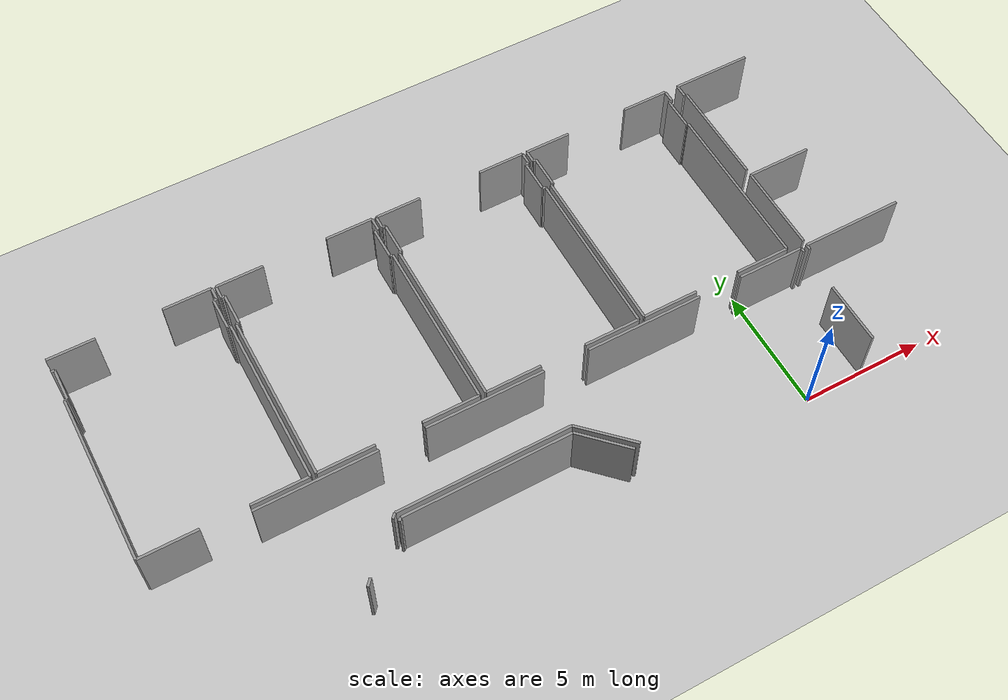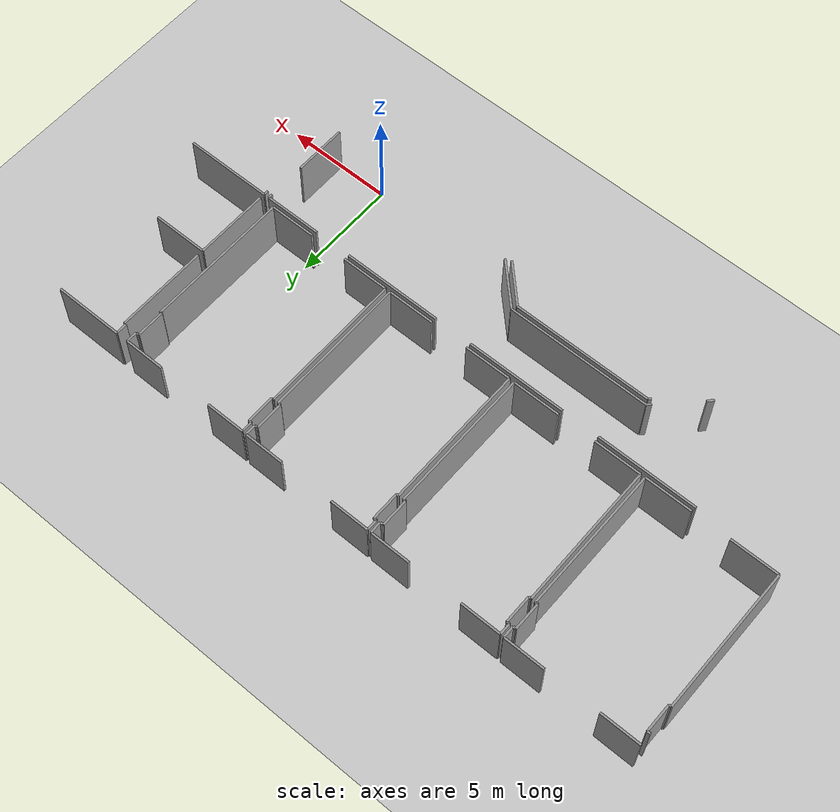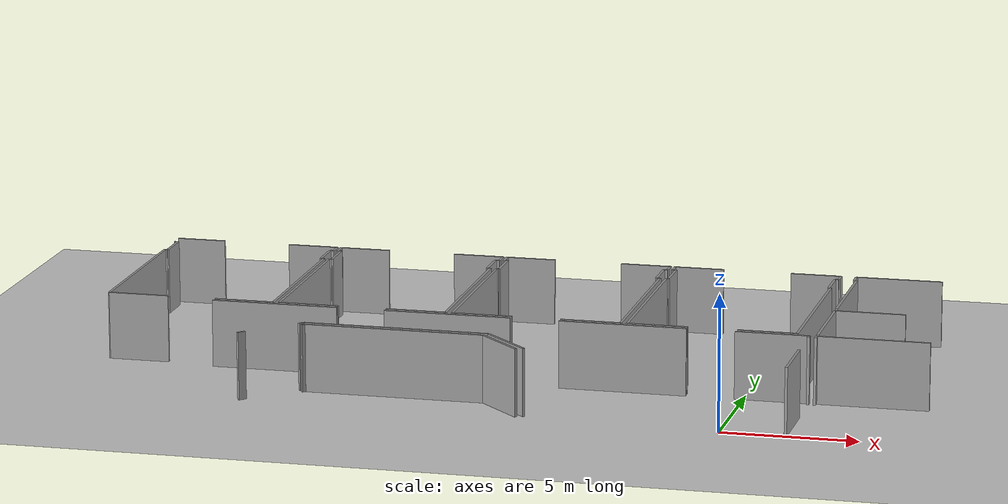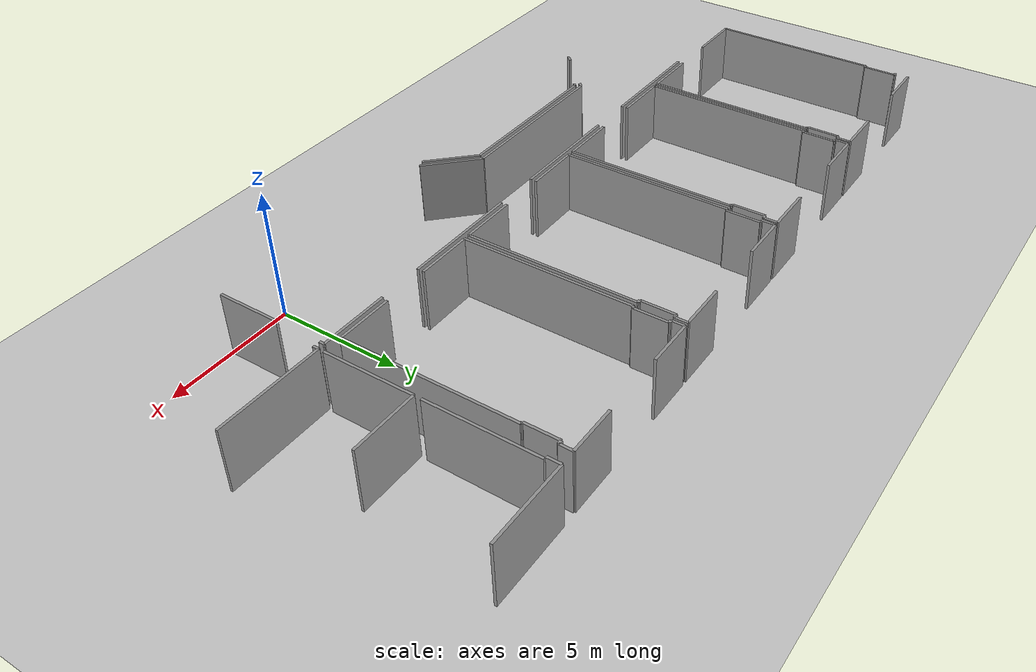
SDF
<sdf version="1.6">
 <world name="default">
  <model name="ground_plane">
   <static>1</static>
   <link name="link">
    <collision name="collision">
     <geometry><plane><normal>0 0 1</normal><size>100 100</size></plane></geometry>
     <surface><friction><ode><mu>100</mu><mu2>50</mu2></ode></friction></surface>
    </collision>
    <visual name="visual">
     <cast_shadows>0</cast_shadows>
     <geometry><plane><normal>0 0 1</normal><size>100 100</size></plane></geometry>
     <material>
      <script><uri>file://media/materials/scripts/gazebo.material</uri><name>Gazebo/Grey</name></script>
     </material>
    </visual>
   </link>
  </model>
  <model name="0510040943_A-40">
   <static>1</static>
   <link name="Wall_18">
    <collision name="Wall_18_Collision">
     <geometry><box><size>4.72179936063 0.1 2.5</size></box></geometry>
     <pose>2.36089968032 0 1.25 0 0 0</pose>
    </collision>
    <visual name="Wall_18_Visual">
     <pose>2.36089968032 0 1.25 0 0 0</pose>
     <geometry><box><size>4.72179936063 0.1 2.5</size></box></geometry>
     <material>
      <script><uri>file://media/materials/scripts/gazebo.material</uri><name>Gazebo/Grey</name></script>
      <ambient>1 1 1 1</ambient>
     </material>
    </visual>
    <pose>36.3516770691 -8.89303293246 0 0 0 0.0</pose>
   </link>
   <link name="Wall_19">
    <collision name="Wall_19_Collision">
     <geometry><box><size>4.69921855178 0.1 2.5</size></box></geometry>
     <pose>2.34960927589 0 1.25 0 0 0</pose>
    </collision>
    <visual name="Wall_19_Visual">
     <pose>2.34960927589 0 1.25 0 0 0</pose>
     <geometry><box><size>4.69921855178 0.1 2.5</size></box></geometry>
     <material>
      <script><uri>file://media/materials/scripts/gazebo.material</uri><name>Gazebo/Grey</name></script>
      <ambient>1 1 1 1</ambient>
     </material>
    </visual>
    <pose>42.8505099711 -8.89303293246 0 0 0 0.0</pose>
   </link>
   <link name="Wall_20">
    <collision name="Wall_20_Collision">
     <geometry><box><size>4.69059217537 0.1 2.5</size></box></geometry>
     <pose>2.34529608768 0 1.25 0 0 0</pose>
    </collision>
    <visual name="Wall_20_Visual">
     <pose>2.34529608768 0 1.25 0 0 0</pose>
     <geometry><box><size>4.69059217537 0.1 2.5</size></box></geometry>
     <material>
      <script><uri>file://media/materials/scripts/gazebo.material</uri><name>Gazebo/Grey</name></script>
      <ambient>1 1 1 1</ambient>
     </material>
    </visual>
    <pose>49.3622824377 -8.89303293246 0 0 0 0.0</pose>
   </link>
   <link name="Wall_21">
    <collision name="Wall_21_Collision">
     <geometry><box><size>2.69548891257 0.1 2.5</size></box></geometry>
     <pose>1.34774445628 0 1.25 0 0 0</pose>
    </collision>
    <visual name="Wall_21_Visual">
     <pose>1.34774445628 0 1.25 0 0 0</pose>
     <geometry><box><size>2.69548891257 0.1 2.5</size></box></geometry>
     <material>
      <script><uri>file://media/materials/scripts/gazebo.material</uri><name>Gazebo/Grey</name></script>
      <ambient>1 1 1 1</ambient>
     </material>
    </visual>
    <pose>55.8178565992 -8.89303293246 0 0 0 0.0</pose>
   </link>
   <link name="Wall_22">
    <collision name="Wall_22_Collision">
     <geometry><box><size>0.188511696352 0.1 2.5</size></box></geometry>
     <pose>0.0942558481758 0 1.25 0 0 0</pose>
    </collision>
    <visual name="Wall_22_Visual">
     <pose>0.0942558481758 0 1.25 0 0 0</pose>
     <geometry><box><size>0.188511696352 0.1 2.5</size></box></geometry>
     <material>
      <script><uri>file://media/materials/scripts/gazebo.material</uri><name>Gazebo/Grey</name></script>
      <ambient>1 1 1 1</ambient>
     </material>
    </visual>
    <pose>58.5133455117 -8.89303293246 0 0 0 -1.57079632679</pose>
   </link>
   <link name="Wall_23">
    <collision name="Wall_23_Collision">
     <geometry><box><size>2.47729233267 0.1 2.5</size></box></geometry>
     <pose>1.23864616634 0 1.25 0 0 0</pose>
    </collision>
    <visual name="Wall_23_Visual">
     <pose>1.23864616634 0 1.25 0 0 0</pose>
     <geometry><box><size>2.47729233267 0.1 2.5</size></box></geometry>
     <material>
      <script><uri>file://media/materials/scripts/gazebo.material</uri><name>Gazebo/Grey</name></script>
      <ambient>1 1 1 1</ambient>
     </material>
    </visual>
    <pose>58.5133455117 -10.8866138935 0 0 0 -1.57079632679</pose>
   </link>
   <link name="Wall_30">
    <collision name="Wall_30_Collision">
     <geometry><box><size>2.41902203418 0.1 2.5</size></box></geometry>
     <pose>1.20951101709 0 1.25 0 0 0</pose>
    </collision>
    <visual name="Wall_30_Visual">
     <pose>1.20951101709 0 1.25 0 0 0</pose>
     <geometry><box><size>2.41902203418 0.1 2.5</size></box></geometry>
     <material>
      <script><uri>file://media/materials/scripts/gazebo.material</uri><name>Gazebo/Grey</name></script>
      <ambient>1 1 1 1</ambient>
     </material>
    </visual>
    <pose>49.0349875679 -12.9497132998 0 0 0 2.35971729981</pose>
   </link>
   <link name="Wall_31">
    <collision name="Wall_31_Collision">
     <geometry><box><size>6.8106510377 0.1 2.5</size></box></geometry>
     <pose>3.40532551885 0 1.25 0 0 0</pose>
    </collision>
    <visual name="Wall_31_Visual">
     <pose>3.40532551885 0 1.25 0 0 0</pose>
     <geometry><box><size>6.8106510377 0.1 2.5</size></box></geometry>
     <material>
      <script><uri>file://media/materials/scripts/gazebo.material</uri><name>Gazebo/Grey</name></script>
      <ambient>1 1 1 1</ambient>
     </material>
    </visual>
    <pose>47.3184655199 -11.2452428071 0 0 0 3.14159265359</pose>
   </link>
   <link name="Wall_32">
    <collision name="Wall_32_Collision">
     <geometry><box><size>0.22569146261 0.1 2.5</size></box></geometry>
     <pose>0.112845731305 0 1.25 0 0 0</pose>
    </collision>
    <visual name="Wall_32_Visual">
     <pose>0.112845731305 0 1.25 0 0 0</pose>
     <geometry><box><size>0.22569146261 0.1 2.5</size></box></geometry>
     <material>
      <script><uri>file://media/materials/scripts/gazebo.material</uri><name>Gazebo/Grey</name></script>
      <ambient>1 1 1 1</ambient>
     </material>
    </visual>
    <pose>40.5078144822 -11.2452428071 0 0 0 -2.35619449019</pose>
   </link>
   <link name="Wall_33">
    <collision name="Wall_33_Collision">
     <geometry><box><size>0.31713751447 0.1 2.5</size></box></geometry>
     <pose>0.158568757235 0 1.25 0 0 0</pose>
    </collision>
    <visual name="Wall_33_Visual">
     <pose>0.158568757235 0 1.25 0 0 0</pose>
     <geometry><box><size>0.31713751447 0.1 2.5</size></box></geometry>
     <material>
      <script><uri>file://media/materials/scripts/gazebo.material</uri><name>Gazebo/Grey</name></script>
      <ambient>1 1 1 1</ambient>
     </material>
    </visual>
    <pose>38.7857106612 -12.9251027554 0 0 0 -2.30072736439</pose>
   </link>
   <link name="Wall_92">
    <collision name="Wall_92_Collision">
     <geometry><box><size>6.78642106866 0.1 2.5</size></box></geometry>
     <pose>3.39321053433 0 1.25 0 0 0</pose>
    </collision>
    <visual name="Wall_92_Visual">
     <pose>3.39321053433 0 1.25 0 0 0</pose>
     <geometry><box><size>6.78642106866 0.1 2.5</size></box></geometry>
     <material>
      <script><uri>file://media/materials/scripts/gazebo.material</uri><name>Gazebo/Grey</name></script>
      <ambient>1 1 1 1</ambient>
     </material>
    </visual>
    <pose>32.3336885371 -8.6659562592 0 0 0 1.57079632679</pose>
   </link>
   <link name="Wall_93">
    <collision name="Wall_93_Collision">
     <geometry><box><size>0.107322271274 0.1 2.5</size></box></geometry>
     <pose>0.0536611356371 0 1.25 0 0 0</pose>
    </collision>
    <visual name="Wall_93_Visual">
     <pose>0.0536611356371 0 1.25 0 0 0</pose>
     <geometry><box><size>0.107322271274 0.1 2.5</size></box></geometry>
     <material>
      <script><uri>file://media/materials/scripts/gazebo.material</uri><name>Gazebo/Grey</name></script>
      <ambient>1 1 1 1</ambient>
     </material>
    </visual>
    <pose>32.3336885371 -1.87953519054 0 0 0 0.0</pose>
   </link>
   <link name="Wall_94">
    <collision name="Wall_94_Collision">
     <geometry><box><size>1.31197036586 0.1 2.5</size></box></geometry>
     <pose>0.65598518293 0 1.25 0 0 0</pose>
    </collision>
    <visual name="Wall_94_Visual">
     <pose>0.65598518293 0 1.25 0 0 0</pose>
     <geometry><box><size>1.31197036586 0.1 2.5</size></box></geometry>
     <material>
      <script><uri>file://media/materials/scripts/gazebo.material</uri><name>Gazebo/Grey</name></script>
      <ambient>1 1 1 1</ambient>
     </material>
    </visual>
    <pose>32.4410108083 -1.87953519054 0 0 0 1.57079632679</pose>
   </link>
   <link name="Wall_95">
    <collision name="Wall_95_Collision">
     <geometry><box><size>0.138783173492 0.1 2.5</size></box></geometry>
     <pose>0.0693915867458 0 1.25 0 0 0</pose>
    </collision>
    <visual name="Wall_95_Visual">
     <pose>0.0693915867458 0 1.25 0 0 0</pose>
     <geometry><box><size>0.138783173492 0.1 2.5</size></box></geometry>
     <material>
      <script><uri>file://media/materials/scripts/gazebo.material</uri><name>Gazebo/Grey</name></script>
      <ambient>1 1 1 1</ambient>
     </material>
    </visual>
    <pose>32.4410108083 -0.567564824682 0 0 0 3.14159265359</pose>
   </link>
   <link name="Wall_97">
    <collision name="Wall_97_Collision">
     <geometry><box><size>1.86063327752 0.1 2.5</size></box></geometry>
     <pose>0.930316638758 0 1.25 0 0 0</pose>
    </collision>
    <visual name="Wall_97_Visual">
     <pose>0.930316638758 0 1.25 0 0 0</pose>
     <geometry><box><size>1.86063327752 0.1 2.5</size></box></geometry>
     <material>
      <script><uri>file://media/materials/scripts/gazebo.material</uri><name>Gazebo/Grey</name></script>
      <ambient>1 1 1 1</ambient>
     </material>
    </visual>
    <pose>32.3022276349 -0.0189019130258 0 0 0 0.0</pose>
   </link>
   <link name="Wall_98">
    <collision name="Wall_98_Collision">
     <geometry><box><size>1.91112295124 0.1 2.5</size></box></geometry>
     <pose>0.955561475618 0 1.25 0 0 0</pose>
    </collision>
    <visual name="Wall_98_Visual">
     <pose>0.955561475618 0 1.25 0 0 0</pose>
     <geometry><box><size>1.91112295124 0.1 2.5</size></box></geometry>
     <material>
      <script><uri>file://media/materials/scripts/gazebo.material</uri><name>Gazebo/Grey</name></script>
      <ambient>1 1 1 1</ambient>
     </material>
    </visual>
    <pose>36.7171563404 -0.0189019130258 0 0 0 0.0</pose>
   </link>
   <link name="Wall_99">
    <collision name="Wall_99_Collision">
     <geometry><box><size>0.542446846298 0.1 2.5</size></box></geometry>
     <pose>0.271223423149 0 1.25 0 0 0</pose>
    </collision>
    <visual name="Wall_99_Visual">
     <pose>0.271223423149 0 1.25 0 0 0</pose>
     <geometry><box><size>0.542446846298 0.1 2.5</size></box></geometry>
     <material>
      <script><uri>file://media/materials/scripts/gazebo.material</uri><name>Gazebo/Grey</name></script>
      <ambient>1 1 1 1</ambient>
     </material>
    </visual>
    <pose>38.6282792916 -0.0189019130258 0 0 0 -1.57079632679</pose>
   </link>
   <link name="Wall_100">
    <collision name="Wall_100_Collision">
     <geometry><box><size>0.132440249657 0.1 2.5</size></box></geometry>
     <pose>0.0662201248287 0 1.25 0 0 0</pose>
    </collision>
    <visual name="Wall_100_Visual">
     <pose>0.0662201248287 0 1.25 0 0 0</pose>
     <geometry><box><size>0.132440249657 0.1 2.5</size></box></geometry>
     <material>
      <script><uri>file://media/materials/scripts/gazebo.material</uri><name>Gazebo/Grey</name></script>
      <ambient>1 1 1 1</ambient>
     </material>
    </visual>
    <pose>38.6282792916 -0.561348759324 0 0 0 3.14159265359</pose>
   </link>
   <link name="Wall_101">
    <collision name="Wall_101_Collision">
     <geometry><box><size>1.29103871721 0.1 2.5</size></box></geometry>
     <pose>0.645519358604 0 1.25 0 0 0</pose>
    </collision>
    <visual name="Wall_101_Visual">
     <pose>0.645519358604 0 1.25 0 0 0</pose>
     <geometry><box><size>1.29103871721 0.1 2.5</size></box></geometry>
     <material>
      <script><uri>file://media/materials/scripts/gazebo.material</uri><name>Gazebo/Grey</name></script>
      <ambient>1 1 1 1</ambient>
     </material>
    </visual>
    <pose>38.495839042 -0.561348759324 0 0 0 -1.57079632679</pose>
   </link>
   <link name="Wall_102">
    <collision name="Wall_102_Collision">
     <geometry><box><size>0.111635459481 0.1 2.5</size></box></geometry>
     <pose>0.0558177297407 0 1.25 0 0 0</pose>
    </collision>
    <visual name="Wall_102_Visual">
     <pose>0.0558177297407 0 1.25 0 0 0</pose>
     <geometry><box><size>0.111635459481 0.1 2.5</size></box></geometry>
     <material>
      <script><uri>file://media/materials/scripts/gazebo.material</uri><name>Gazebo/Grey</name></script>
      <ambient>1 1 1 1</ambient>
     </material>
    </visual>
    <pose>38.495839042 -1.85238747653 0 0 0 0.0</pose>
   </link>
   <link name="Wall_103">
    <collision name="Wall_103_Collision">
     <geometry><box><size>6.81356878267 0.1 2.5</size></box></geometry>
     <pose>3.40678439133 0 1.25 0 0 0</pose>
    </collision>
    <visual name="Wall_103_Visual">
     <pose>3.40678439133 0 1.25 0 0 0</pose>
     <geometry><box><size>6.81356878267 0.1 2.5</size></box></geometry>
     <material>
      <script><uri>file://media/materials/scripts/gazebo.material</uri><name>Gazebo/Grey</name></script>
      <ambient>1 1 1 1</ambient>
     </material>
    </visual>
    <pose>38.6074745014 -1.85238747653 0 0 0 -1.57079632679</pose>
   </link>
   <link name="Wall_104">
    <collision name="Wall_104_Collision">
     <geometry><box><size>2.22459024712 0.1 2.5</size></box></geometry>
     <pose>1.11229512356 0 1.25 0 0 0</pose>
    </collision>
    <visual name="Wall_104_Visual">
     <pose>1.11229512356 0 1.25 0 0 0</pose>
     <geometry><box><size>2.22459024712 0.1 2.5</size></box></geometry>
     <material>
      <script><uri>file://media/materials/scripts/gazebo.material</uri><name>Gazebo/Grey</name></script>
      <ambient>1 1 1 1</ambient>
     </material>
    </visual>
    <pose>38.6074745014 -8.6659562592 0 0 0 3.14159265359</pose>
   </link>
   <link name="Wall_105">
    <collision name="Wall_105_Collision">
     <geometry><box><size>2.25516314 0.1 2.5</size></box></geometry>
     <pose>1.12758157 0 1.25 0 0 0</pose>
    </collision>
    <visual name="Wall_105_Visual">
     <pose>1.12758157 0 1.25 0 0 0</pose>
     <geometry><box><size>2.25516314 0.1 2.5</size></box></geometry>
     <material>
      <script><uri>file://media/materials/scripts/gazebo.material</uri><name>Gazebo/Grey</name></script>
      <ambient>1 1 1 1</ambient>
     </material>
    </visual>
    <pose>34.5888516771 -8.6659562592 0 0 0 3.14159265359</pose>
   </link>
   <link name="Wall_106">
    <collision name="Wall_106_Collision">
     <geometry><box><size>2.22712741665 0.1 2.5</size></box></geometry>
     <pose>1.11356370833 0 1.25 0 0 0</pose>
    </collision>
    <visual name="Wall_106_Visual">
     <pose>1.11356370833 0 1.25 0 0 0</pose>
     <geometry><box><size>2.22712741665 0.1 2.5</size></box></geometry>
     <material>
      <script><uri>file://media/materials/scripts/gazebo.material</uri><name>Gazebo/Grey</name></script>
      <ambient>1 1 1 1</ambient>
     </material>
    </visual>
    <pose>38.8298574111 -8.65656873192 0 0 0 0.0</pose>
   </link>
   <link name="Wall_107">
    <collision name="Wall_107_Collision">
     <geometry><box><size>2.23499264221 0.1 2.5</size></box></geometry>
     <pose>1.1174963211 0 1.25 0 0 0</pose>
    </collision>
    <visual name="Wall_107_Visual">
     <pose>1.1174963211 0 1.25 0 0 0</pose>
     <geometry><box><size>2.23499264221 0.1 2.5</size></box></geometry>
     <material>
      <script><uri>file://media/materials/scripts/gazebo.material</uri><name>Gazebo/Grey</name></script>
      <ambient>1 1 1 1</ambient>
     </material>
    </visual>
    <pose>42.8586289136 -8.65656873192 0 0 0 0.0</pose>
   </link>
   <link name="Wall_108">
    <collision name="Wall_108_Collision">
     <geometry><box><size>6.76789973106 0.1 2.5</size></box></geometry>
     <pose>3.38394986553 0 1.25 0 0 0</pose>
    </collision>
    <visual name="Wall_108_Visual">
     <pose>3.38394986553 0 1.25 0 0 0</pose>
     <geometry><box><size>6.76789973106 0.1 2.5</size></box></geometry>
     <material>
      <script><uri>file://media/materials/scripts/gazebo.material</uri><name>Gazebo/Grey</name></script>
      <ambient>1 1 1 1</ambient>
     </material>
    </visual>
    <pose>45.0936215558 -8.65656873192 0 0 0 1.57079632679</pose>
   </link>
   <link name="Wall_109">
    <collision name="Wall_109_Collision">
     <geometry><box><size>0.110620591668 0.1 2.5</size></box></geometry>
     <pose>0.055310295834 0 1.25 0 0 0</pose>
    </collision>
    <visual name="Wall_109_Visual">
     <pose>0.055310295834 0 1.25 0 0 0</pose>
     <geometry><box><size>0.110620591668 0.1 2.5</size></box></geometry>
     <material>
      <script><uri>file://media/materials/scripts/gazebo.material</uri><name>Gazebo/Grey</name></script>
      <ambient>1 1 1 1</ambient>
     </material>
    </visual>
    <pose>45.0936215558 -1.88866900086 0 0 0 3.14159265359</pose>
   </link>
   <link name="Wall_110">
    <collision name="Wall_110_Collision">
     <geometry><box><size>1.30562744203 0.1 2.5</size></box></geometry>
     <pose>0.652813721013 0 1.25 0 0 0</pose>
    </collision>
    <visual name="Wall_110_Visual">
     <pose>0.652813721013 0 1.25 0 0 0</pose>
     <geometry><box><size>1.30562744203 0.1 2.5</size></box></geometry>
     <material>
      <script><uri>file://media/materials/scripts/gazebo.material</uri><name>Gazebo/Grey</name></script>
      <ambient>1 1 1 1</ambient>
     </material>
    </visual>
    <pose>44.9830009641 -1.88866900086 0 0 0 1.57079632679</pose>
   </link>
   <link name="Wall_111">
    <collision name="Wall_111_Collision">
     <geometry><box><size>0.15223017202 0.1 2.5</size></box></geometry>
     <pose>0.07611508601 0 1.25 0 0 0</pose>
    </collision>
    <visual name="Wall_111_Visual">
     <pose>0.07611508601 0 1.25 0 0 0</pose>
     <geometry><box><size>0.15223017202 0.1 2.5</size></box></geometry>
     <material>
      <script><uri>file://media/materials/scripts/gazebo.material</uri><name>Gazebo/Grey</name></script>
      <ambient>1 1 1 1</ambient>
     </material>
    </visual>
    <pose>44.9830009641 -0.583041558837 0 0 0 0.0</pose>
   </link>
   <link name="Wall_112">
    <collision name="Wall_112_Collision">
     <geometry><box><size>0.551200081189 0.1 2.5</size></box></geometry>
     <pose>0.275600040595 0 1.25 0 0 0</pose>
    </collision>
    <visual name="Wall_112_Visual">
     <pose>0.275600040595 0 1.25 0 0 0</pose>
     <geometry><box><size>0.551200081189 0.1 2.5</size></box></geometry>
     <material>
      <script><uri>file://media/materials/scripts/gazebo.material</uri><name>Gazebo/Grey</name></script>
      <ambient>1 1 1 1</ambient>
     </material>
    </visual>
    <pose>45.1352311361 -0.583041558837 0 0 0 1.57079632679</pose>
   </link>
   <link name="Wall_113">
    <collision name="Wall_113_Collision">
     <geometry><box><size>1.89653422642 0.1 2.5</size></box></geometry>
     <pose>0.948267113209 0 1.25 0 0 0</pose>
    </collision>
    <visual name="Wall_113_Visual">
     <pose>0.948267113209 0 1.25 0 0 0</pose>
     <geometry><box><size>1.89653422642 0.1 2.5</size></box></geometry>
     <material>
      <script><uri>file://media/materials/scripts/gazebo.material</uri><name>Gazebo/Grey</name></script>
      <ambient>1 1 1 1</ambient>
     </material>
    </visual>
    <pose>45.1352311361 -0.0318414776475 0 0 0 3.14159265359</pose>
   </link>
   <link name="Wall_114">
    <collision name="Wall_114_Collision">
     <geometry><box><size>1.88587811438 0.1 2.5</size></box></geometry>
     <pose>0.942939057188 0 1.25 0 0 0</pose>
    </collision>
    <visual name="Wall_114_Visual">
     <pose>0.942939057188 0 1.25 0 0 0</pose>
     <geometry><box><size>1.88587811438 0.1 2.5</size></box></geometry>
     <material>
      <script><uri>file://media/materials/scripts/gazebo.material</uri><name>Gazebo/Grey</name></script>
      <ambient>1 1 1 1</ambient>
     </material>
    </visual>
    <pose>40.6844014817 -0.0318414776475 0 0 0 3.14159265359</pose>
   </link>
   <link name="Wall_115">
    <collision name="Wall_115_Collision">
     <geometry><box><size>0.529507281677 0.1 2.5</size></box></geometry>
     <pose>0.264753640838 0 1.25 0 0 0</pose>
    </collision>
    <visual name="Wall_115_Visual">
     <pose>0.264753640838 0 1.25 0 0 0</pose>
     <geometry><box><size>0.529507281677 0.1 2.5</size></box></geometry>
     <material>
      <script><uri>file://media/materials/scripts/gazebo.material</uri><name>Gazebo/Grey</name></script>
      <ambient>1 1 1 1</ambient>
     </material>
    </visual>
    <pose>38.7985233673 -0.0318414776475 0 0 0 -1.57079632679</pose>
   </link>
   <link name="Wall_116">
    <collision name="Wall_116_Collision">
     <geometry><box><size>0.126097325823 0.1 2.5</size></box></geometry>
     <pose>0.0630486629117 0 1.25 0 0 0</pose>
    </collision>
    <visual name="Wall_116_Visual">
     <pose>0.0630486629117 0 1.25 0 0 0</pose>
     <geometry><box><size>0.126097325823 0.1 2.5</size></box></geometry>
     <material>
      <script><uri>file://media/materials/scripts/gazebo.material</uri><name>Gazebo/Grey</name></script>
      <ambient>1 1 1 1</ambient>
     </material>
    </visual>
    <pose>38.7985233673 -0.561348759324 0 0 0 0.0</pose>
   </link>
   <link name="Wall_117">
    <collision name="Wall_117_Collision">
     <geometry><box><size>1.30550058355 0.1 2.5</size></box></geometry>
     <pose>0.652750291774 0 1.25 0 0 0</pose>
    </collision>
    <visual name="Wall_117_Visual">
     <pose>0.652750291774 0 1.25 0 0 0</pose>
     <geometry><box><size>1.30550058355 0.1 2.5</size></box></geometry>
     <material>
      <script><uri>file://media/materials/scripts/gazebo.material</uri><name>Gazebo/Grey</name></script>
      <ambient>1 1 1 1</ambient>
     </material>
    </visual>
    <pose>38.9246206932 -0.561348759324 0 0 0 -1.57079632679</pose>
   </link>
   <link name="Wall_118">
    <collision name="Wall_118_Collision">
     <geometry><box><size>0.106814837367 0.1 2.5</size></box></geometry>
     <pose>0.0534074186837 0 1.25 0 0 0</pose>
    </collision>
    <visual name="Wall_118_Visual">
     <pose>0.0534074186837 0 1.25 0 0 0</pose>
     <geometry><box><size>0.106814837367 0.1 2.5</size></box></geometry>
     <material>
      <script><uri>file://media/materials/scripts/gazebo.material</uri><name>Gazebo/Grey</name></script>
      <ambient>1 1 1 1</ambient>
     </material>
    </visual>
    <pose>38.9246206932 -1.86684934287 0 0 0 3.14159265359</pose>
   </link>
   <link name="Wall_119">
    <collision name="Wall_119_Collision">
     <geometry><box><size>6.78973008462 0.1 2.5</size></box></geometry>
     <pose>3.39486504231 0 1.25 0 0 0</pose>
    </collision>
    <visual name="Wall_119_Visual">
     <pose>3.39486504231 0 1.25 0 0 0</pose>
     <geometry><box><size>6.78973008462 0.1 2.5</size></box></geometry>
     <material>
      <script><uri>file://media/materials/scripts/gazebo.material</uri><name>Gazebo/Grey</name></script>
      <ambient>1 1 1 1</ambient>
     </material>
    </visual>
    <pose>38.8178058558 -1.86684934287 0 0 0 -1.56902135762</pose>
   </link>
   <link name="Wall_120">
    <collision name="Wall_120_Collision">
     <geometry><box><size>6.77868270158 0.1 2.5</size></box></geometry>
     <pose>3.38934135079 0 1.25 0 0 0</pose>
    </collision>
    <visual name="Wall_120_Visual">
     <pose>3.38934135079 0 1.25 0 0 0</pose>
     <geometry><box><size>6.77868270158 0.1 2.5</size></box></geometry>
     <material>
      <script><uri>file://media/materials/scripts/gazebo.material</uri><name>Gazebo/Grey</name></script>
      <ambient>1 1 1 1</ambient>
     </material>
    </visual>
    <pose>45.3404881514 -8.66785913635 0 0 0 1.57079632679</pose>
   </link>
   <link name="Wall_121">
    <collision name="Wall_121_Collision">
     <geometry><box><size>0.0945095651291 0.1 2.5</size></box></geometry>
     <pose>0.0472547825646 0 1.25 0 0 0</pose>
    </collision>
    <visual name="Wall_121_Visual">
     <pose>0.0472547825646 0 1.25 0 0 0</pose>
     <geometry><box><size>0.0945095651291 0.1 2.5</size></box></geometry>
     <material>
      <script><uri>file://media/materials/scripts/gazebo.material</uri><name>Gazebo/Grey</name></script>
      <ambient>1 1 1 1</ambient>
     </material>
    </visual>
    <pose>45.3404881514 -1.88917643477 0 0 0 0.0</pose>
   </link>
   <link name="Wall_122">
    <collision name="Wall_122_Collision">
     <geometry><box><size>1.33049170346 0.1 2.5</size></box></geometry>
     <pose>0.665245851728 0 1.25 0 0 0</pose>
    </collision>
    <visual name="Wall_122_Visual">
     <pose>0.665245851728 0 1.25 0 0 0</pose>
     <geometry><box><size>1.33049170346 0.1 2.5</size></box></geometry>
     <material>
      <script><uri>file://media/materials/scripts/gazebo.material</uri><name>Gazebo/Grey</name></script>
      <ambient>1 1 1 1</ambient>
     </material>
    </visual>
    <pose>45.4349977165 -1.88917643477 0 0 0 1.57079632679</pose>
   </link>
   <link name="Wall_123">
    <collision name="Wall_123_Collision">
     <geometry><box><size>0.128761353834 0.1 2.5</size></box></geometry>
     <pose>0.0643806769168 0 1.25 0 0 0</pose>
    </collision>
    <visual name="Wall_123_Visual">
     <pose>0.0643806769168 0 1.25 0 0 0</pose>
     <geometry><box><size>0.128761353834 0.1 2.5</size></box></geometry>
     <material>
      <script><uri>file://media/materials/scripts/gazebo.material</uri><name>Gazebo/Grey</name></script>
      <ambient>1 1 1 1</ambient>
     </material>
    </visual>
    <pose>45.4349977165 -0.558684731314 0 0 0 3.14159265359</pose>
   </link>
   <link name="Wall_124">
    <collision name="Wall_124_Collision">
     <geometry><box><size>0.519866037449 0.1 2.5</size></box></geometry>
     <pose>0.259933018724 0 1.25 0 0 0</pose>
    </collision>
    <visual name="Wall_124_Visual">
     <pose>0.259933018724 0 1.25 0 0 0</pose>
     <geometry><box><size>0.519866037449 0.1 2.5</size></box></geometry>
     <material>
      <script><uri>file://media/materials/scripts/gazebo.material</uri><name>Gazebo/Grey</name></script>
      <ambient>1 1 1 1</ambient>
     </material>
    </visual>
    <pose>45.3062363627 -0.558684731314 0 0 0 1.57079632679</pose>
   </link>
   <link name="Wall_125">
    <collision name="Wall_125_Collision">
     <geometry><box><size>1.85048459938 0.1 2.5</size></box></geometry>
     <pose>0.92524229969 0 1.25 0 0 0</pose>
    </collision>
    <visual name="Wall_125_Visual">
     <pose>0.92524229969 0 1.25 0 0 0</pose>
     <geometry><box><size>1.85048459938 0.1 2.5</size></box></geometry>
     <material>
      <script><uri>file://media/materials/scripts/gazebo.material</uri><name>Gazebo/Grey</name></script>
      <ambient>1 1 1 1</ambient>
     </material>
    </visual>
    <pose>45.3062363627 -0.0388186938651 0 0 0 0.0</pose>
   </link>
   <link name="Wall_126">
    <collision name="Wall_126_Collision">
     <geometry><box><size>1.88384837875 0.1 2.5</size></box></geometry>
     <pose>0.941924189374 0 1.25 0 0 0</pose>
    </collision>
    <visual name="Wall_126_Visual">
     <pose>0.941924189374 0 1.25 0 0 0</pose>
     <geometry><box><size>1.88384837875 0.1 2.5</size></box></geometry>
     <material>
      <script><uri>file://media/materials/scripts/gazebo.material</uri><name>Gazebo/Grey</name></script>
      <ambient>1 1 1 1</ambient>
     </material>
    </visual>
    <pose>49.722433653 -0.0388186938651 0 0 0 0.0</pose>
   </link>
   <link name="Wall_127">
    <collision name="Wall_127_Collision">
     <geometry><box><size>0.505531029583 0.1 2.5</size></box></geometry>
     <pose>0.252765514792 0 1.25 0 0 0</pose>
    </collision>
    <visual name="Wall_127_Visual">
     <pose>0.252765514792 0 1.25 0 0 0</pose>
     <geometry><box><size>0.505531029583 0.1 2.5</size></box></geometry>
     <material>
      <script><uri>file://media/materials/scripts/gazebo.material</uri><name>Gazebo/Grey</name></script>
      <ambient>1 1 1 1</ambient>
     </material>
    </visual>
    <pose>51.6062820318 -0.0388186938651 0 0 0 -1.57079632679</pose>
   </link>
   <link name="Wall_128">
    <collision name="Wall_128_Collision">
     <geometry><box><size>0.138402598062 0.1 2.5</size></box></geometry>
     <pose>0.0692012990308 0 1.25 0 0 0</pose>
    </collision>
    <visual name="Wall_128_Visual">
     <pose>0.0692012990308 0 1.25 0 0 0</pose>
     <geometry><box><size>0.138402598062 0.1 2.5</size></box></geometry>
     <material>
      <script><uri>file://media/materials/scripts/gazebo.material</uri><name>Gazebo/Grey</name></script>
      <ambient>1 1 1 1</ambient>
     </material>
    </visual>
    <pose>51.6062820318 -0.544349723449 0 0 0 3.14159265359</pose>
   </link>
   <link name="Wall_129">
    <collision name="Wall_129_Collision">
     <geometry><box><size>1.33061856193 0.1 2.5</size></box></geometry>
     <pose>0.665309280966 0 1.25 0 0 0</pose>
    </collision>
    <visual name="Wall_129_Visual">
     <pose>0.665309280966 0 1.25 0 0 0</pose>
     <geometry><box><size>1.33061856193 0.1 2.5</size></box></geometry>
     <material>
      <script><uri>file://media/materials/scripts/gazebo.material</uri><name>Gazebo/Grey</name></script>
      <ambient>1 1 1 1</ambient>
     </material>
    </visual>
    <pose>51.4678794337 -0.544349723449 0 0 0 -1.57079632679</pose>
   </link>
   <link name="Wall_130">
    <collision name="Wall_130_Collision">
     <geometry><box><size>0.124067590196 0.1 2.5</size></box></geometry>
     <pose>0.0620337950982 0 1.25 0 0 0</pose>
    </collision>
    <visual name="Wall_130_Visual">
     <pose>0.0620337950982 0 1.25 0 0 0</pose>
     <geometry><box><size>0.124067590196 0.1 2.5</size></box></geometry>
     <material>
      <script><uri>file://media/materials/scripts/gazebo.material</uri><name>Gazebo/Grey</name></script>
      <ambient>1 1 1 1</ambient>
     </material>
    </visual>
    <pose>51.4678794337 -1.87496828538 0 0 0 0.0</pose>
   </link>
   <link name="Wall_131">
    <collision name="Wall_131_Collision">
     <geometry><box><size>6.78654792713 0.1 2.5</size></box></geometry>
     <pose>3.39327396357 0 1.25 0 0 0</pose>
    </collision>
    <visual name="Wall_131_Visual">
     <pose>3.39327396357 0 1.25 0 0 0</pose>
     <geometry><box><size>6.78654792713 0.1 2.5</size></box></geometry>
     <material>
      <script><uri>file://media/materials/scripts/gazebo.material</uri><name>Gazebo/Grey</name></script>
      <ambient>1 1 1 1</ambient>
     </material>
    </visual>
    <pose>51.5919470239 -1.87496828538 0 0 0 -1.57079632679</pose>
   </link>
   <link name="Wall_132">
    <collision name="Wall_132_Collision">
     <geometry><box><size>2.22712741665 0.1 2.5</size></box></geometry>
     <pose>1.11356370833 0 1.25 0 0 0</pose>
    </collision>
    <visual name="Wall_132_Visual">
     <pose>1.11356370833 0 1.25 0 0 0</pose>
     <geometry><box><size>2.22712741665 0.1 2.5</size></box></geometry>
     <material>
      <script><uri>file://media/materials/scripts/gazebo.material</uri><name>Gazebo/Grey</name></script>
      <ambient>1 1 1 1</ambient>
     </material>
    </visual>
    <pose>51.5919470239 -8.66151621251 0 0 0 3.14159265359</pose>
   </link>
   <link name="Wall_133">
    <collision name="Wall_133_Collision">
     <geometry><box><size>2.21876382367 0.1 2.5</size></box></geometry>
     <pose>1.10938191184 0 1.25 0 0 0</pose>
    </collision>
    <visual name="Wall_133_Visual">
     <pose>1.10938191184 0 1.25 0 0 0</pose>
     <geometry><box><size>2.21876382367 0.1 2.5</size></box></geometry>
     <material>
      <script><uri>file://media/materials/scripts/gazebo.material</uri><name>Gazebo/Grey</name></script>
      <ambient>1 1 1 1</ambient>
     </material>
    </visual>
    <pose>47.5592429086 -8.66151621251 0 0 0 -3.13873388493</pose>
   </link>
   <link name="Wall_134">
    <collision name="Wall_134_Collision">
     <geometry><box><size>6.77043690059 0.1 2.5</size></box></geometry>
     <pose>3.3852184503 0 1.25 0 0 0</pose>
    </collision>
    <visual name="Wall_134_Visual">
     <pose>3.3852184503 0 1.25 0 0 0</pose>
     <geometry><box><size>6.77043690059 0.1 2.5</size></box></geometry>
     <material>
      <script><uri>file://media/materials/scripts/gazebo.material</uri><name>Gazebo/Grey</name></script>
      <ambient>1 1 1 1</ambient>
     </material>
    </visual>
    <pose>51.8304409601 -8.65606129802 0 0 0 1.57079632679</pose>
   </link>
   <link name="Wall_135">
    <collision name="Wall_135_Collision">
     <geometry><box><size>0.0929872634089 0.1 2.5</size></box></geometry>
     <pose>0.0464936317045 0 1.25 0 0 0</pose>
    </collision>
    <visual name="Wall_135_Visual">
     <pose>0.0464936317045 0 1.25 0 0 0</pose>
     <geometry><box><size>0.0929872634089 0.1 2.5</size></box></geometry>
     <material>
      <script><uri>file://media/materials/scripts/gazebo.material</uri><name>Gazebo/Grey</name></script>
      <ambient>1 1 1 1</ambient>
     </material>
    </visual>
    <pose>51.8304409601 -1.88562439742 0 0 0 0.0</pose>
   </link>
   <link name="Wall_136">
    <collision name="Wall_136_Collision">
     <geometry><box><size>1.33937179682 0.1 2.5</size></box></geometry>
     <pose>0.669685898412 0 1.25 0 0 0</pose>
    </collision>
    <visual name="Wall_136_Visual">
     <pose>0.669685898412 0 1.25 0 0 0</pose>
     <geometry><box><size>1.33937179682 0.1 2.5</size></box></geometry>
     <material>
      <script><uri>file://media/materials/scripts/gazebo.material</uri><name>Gazebo/Grey</name></script>
      <ambient>1 1 1 1</ambient>
     </material>
    </visual>
    <pose>51.9234282235 -1.88562439742 0 0 0 1.57079632679</pose>
   </link>
   <link name="Wall_137">
    <collision name="Wall_137_Collision">
     <geometry><box><size>0.12432130715 0.1 2.5</size></box></geometry>
     <pose>0.0621606535749 0 1.25 0 0 0</pose>
    </collision>
    <visual name="Wall_137_Visual">
     <pose>0.0621606535749 0 1.25 0 0 0</pose>
     <geometry><box><size>0.12432130715 0.1 2.5</size></box></geometry>
     <material>
      <script><uri>file://media/materials/scripts/gazebo.material</uri><name>Gazebo/Grey</name></script>
      <ambient>1 1 1 1</ambient>
     </material>
    </visual>
    <pose>51.9234282235 -0.546252600599 0 0 0 3.14159265359</pose>
   </link>
   <link name="Wall_138">
    <collision name="Wall_138_Collision">
     <geometry><box><size>0.50185213376 0.1 2.5</size></box></geometry>
     <pose>0.25092606688 0 1.25 0 0 0</pose>
    </collision>
    <visual name="Wall_138_Visual">
     <pose>0.25092606688 0 1.25 0 0 0</pose>
     <geometry><box><size>0.50185213376 0.1 2.5</size></box></geometry>
     <material>
      <script><uri>file://media/materials/scripts/gazebo.material</uri><name>Gazebo/Grey</name></script>
      <ambient>1 1 1 1</ambient>
     </material>
    </visual>
    <pose>51.7991069163 -0.546252600599 0 0 0 1.57079632679</pose>
   </link>
   <link name="Wall_139">
    <collision name="Wall_139_Collision">
     <geometry><box><size>1.8536560613 0.1 2.5</size></box></geometry>
     <pose>0.926828030649 0 1.25 0 0 0</pose>
    </collision>
    <visual name="Wall_139_Visual">
     <pose>0.926828030649 0 1.25 0 0 0</pose>
     <geometry><box><size>1.8536560613 0.1 2.5</size></box></geometry>
     <material>
      <script><uri>file://media/materials/scripts/gazebo.material</uri><name>Gazebo/Grey</name></script>
      <ambient>1 1 1 1</ambient>
     </material>
    </visual>
    <pose>51.7991069163 -0.0444004668392 0 0 0 0.0</pose>
   </link>
   <link name="Wall_140">
    <collision name="Wall_140_Collision">
     <geometry><box><size>1.89526564165 0.1 2.5</size></box></geometry>
     <pose>0.947632820825 0 1.25 0 0 0</pose>
    </collision>
    <visual name="Wall_140_Visual">
     <pose>0.947632820825 0 1.25 0 0 0</pose>
     <geometry><box><size>1.89526564165 0.1 2.5</size></box></geometry>
     <material>
      <script><uri>file://media/materials/scripts/gazebo.material</uri><name>Gazebo/Grey</name></script>
      <ambient>1 1 1 1</ambient>
     </material>
    </visual>
    <pose>56.2114984523 -0.0444004668392 0 0 0 0.0</pose>
   </link>
   <link name="Wall_141">
    <collision name="Wall_141_Collision">
     <geometry><box><size>0.510097934744 0.1 2.5</size></box></geometry>
     <pose>0.255048967372 0 1.25 0 0 0</pose>
    </collision>
    <visual name="Wall_141_Visual">
     <pose>0.255048967372 0 1.25 0 0 0</pose>
     <geometry><box><size>0.510097934744 0.1 2.5</size></box></geometry>
     <material>
      <script><uri>file://media/materials/scripts/gazebo.material</uri><name>Gazebo/Grey</name></script>
      <ambient>1 1 1 1</ambient>
     </material>
    </visual>
    <pose>58.106764094 -0.0444004668392 0 0 0 -1.57079632679</pose>
   </link>
   <link name="Wall_142">
    <collision name="Wall_142_Collision">
     <geometry><box><size>0.141066626072 0.1 2.5</size></box></geometry>
     <pose>0.070533313036 0 1.25 0 0 0</pose>
    </collision>
    <visual name="Wall_142_Visual">
     <pose>0.070533313036 0 1.25 0 0 0</pose>
     <geometry><box><size>0.141066626072 0.1 2.5</size></box></geometry>
     <material>
      <script><uri>file://media/materials/scripts/gazebo.material</uri><name>Gazebo/Grey</name></script>
      <ambient>1 1 1 1</ambient>
     </material>
    </visual>
    <pose>58.106764094 -0.554498401583 0 0 0 3.14159265359</pose>
   </link>
   <link name="Wall_143">
    <collision name="Wall_143_Collision">
     <geometry><box><size>1.31869386512 0.1 2.5</size></box></geometry>
     <pose>0.659346932562 0 1.25 0 0 0</pose>
    </collision>
    <visual name="Wall_143_Visual">
     <pose>0.659346932562 0 1.25 0 0 0</pose>
     <geometry><box><size>1.31869386512 0.1 2.5</size></box></geometry>
     <material>
      <script><uri>file://media/materials/scripts/gazebo.material</uri><name>Gazebo/Grey</name></script>
      <ambient>1 1 1 1</ambient>
     </material>
    </visual>
    <pose>57.9656974679 -0.554498401583 0 0 0 -1.57079632679</pose>
   </link>
   <link name="Wall_144">
    <collision name="Wall_144_Collision">
     <geometry><box><size>0.0695184452225 0.1 2.5</size></box></geometry>
     <pose>0.0347592226112 0 1.25 0 0 0</pose>
    </collision>
    <visual name="Wall_144_Visual">
     <pose>0.0347592226112 0 1.25 0 0 0</pose>
     <geometry><box><size>0.0695184452225 0.1 2.5</size></box></geometry>
     <material>
      <script><uri>file://media/materials/scripts/gazebo.material</uri><name>Gazebo/Grey</name></script>
      <ambient>1 1 1 1</ambient>
     </material>
    </visual>
    <pose>57.9656974679 -1.87319226671 0 0 0 0.0</pose>
   </link>
   <link name="Wall_145">
    <collision name="Wall_145_Collision">
     <geometry><box><size>6.78464504998 0.1 2.5</size></box></geometry>
     <pose>3.39232252499 0 1.25 0 0 0</pose>
    </collision>
    <visual name="Wall_145_Visual">
     <pose>3.39232252499 0 1.25 0 0 0</pose>
     <geometry><box><size>6.78464504998 0.1 2.5</size></box></geometry>
     <material>
      <script><uri>file://media/materials/scripts/gazebo.material</uri><name>Gazebo/Grey</name></script>
      <ambient>1 1 1 1</ambient>
     </material>
    </visual>
    <pose>58.0352159131 -1.87319226671 0 0 0 -1.57079632679</pose>
   </link>
   <link name="Wall_146">
    <collision name="Wall_146_Collision">
     <geometry><box><size>2.17207083777 0.1 2.5</size></box></geometry>
     <pose>1.08603541889 0 1.25 0 0 0</pose>
    </collision>
    <visual name="Wall_146_Visual">
     <pose>1.08603541889 0 1.25 0 0 0</pose>
     <geometry><box><size>2.17207083777 0.1 2.5</size></box></geometry>
     <material>
      <script><uri>file://media/materials/scripts/gazebo.material</uri><name>Gazebo/Grey</name></script>
      <ambient>1 1 1 1</ambient>
     </material>
    </visual>
    <pose>58.0352159131 -8.65783731669 0 0 0 3.14159265359</pose>
   </link>
   <link name="Wall_147">
    <collision name="Wall_147_Collision">
     <geometry><box><size>2.22662069105 0.1 2.5</size></box></geometry>
     <pose>1.11331034552 0 1.25 0 0 0</pose>
    </collision>
    <visual name="Wall_147_Visual">
     <pose>1.11331034552 0 1.25 0 0 0</pose>
     <geometry><box><size>2.22662069105 0.1 2.5</size></box></geometry>
     <material>
      <script><uri>file://media/materials/scripts/gazebo.material</uri><name>Gazebo/Grey</name></script>
      <ambient>1 1 1 1</ambient>
     </material>
    </visual>
    <pose>54.0570609428 -8.65783731669 0 0 0 3.14079502386</pose>
   </link>
   <link name="Wall_278">
    <collision name="Wall_278_Collision">
     <geometry><box><size>0.14860998133 0.1 2.5</size></box></geometry>
     <pose>0.0743049906648 0 1.25 0 0 0</pose>
    </collision>
    <visual name="Wall_278_Visual">
     <pose>0.0743049906648 0 1.25 0 0 0</pose>
     <geometry><box><size>0.14860998133 0.1 2.5</size></box></geometry>
     <material>
      <script><uri>file://media/materials/scripts/gazebo.material</uri><name>Gazebo/Grey</name></script>
      <ambient>1 1 1 1</ambient>
     </material>
    </visual>
    <pose>40.4990612473 -11.5895367128 0 0 0 0.740111926595</pose>
   </link>
   <link name="Wall_279">
    <collision name="Wall_279_Collision">
     <geometry><box><size>6.60031968336 0.1 2.5</size></box></geometry>
     <pose>3.30015984168 0 1.25 0 0 0</pose>
    </collision>
    <visual name="Wall_279_Visual">
     <pose>3.30015984168 0 1.25 0 0 0</pose>
     <geometry><box><size>6.60031968336 0.1 2.5</size></box></geometry>
     <material>
      <script><uri>file://media/materials/scripts/gazebo.material</uri><name>Gazebo/Grey</name></script>
      <ambient>1 1 1 1</ambient>
     </material>
    </visual>
    <pose>40.6087938296 -11.4893185163 0 0 0 0.0</pose>
   </link>
   <link name="Wall_280">
    <collision name="Wall_280_Collision">
     <geometry><box><size>2.21225329095 0.1 2.5</size></box></geometry>
     <pose>1.10612664548 0 1.25 0 0 0</pose>
    </collision>
    <visual name="Wall_280_Visual">
     <pose>1.10612664548 0 1.25 0 0 0</pose>
     <geometry><box><size>2.21225329095 0.1 2.5</size></box></geometry>
     <material>
      <script><uri>file://media/materials/scripts/gazebo.material</uri><name>Gazebo/Grey</name></script>
      <ambient>1 1 1 1</ambient>
     </material>
    </visual>
    <pose>47.209113513 -11.4893185163 0 0 0 -0.788479817741</pose>
   </link>
   <link name="Wall_303">
    <collision name="Wall_303_Collision">
     <geometry><box><size>0.220733749429 0.1 2.5</size></box></geometry>
     <pose>0.110366874715 0 1.25 0 0 0</pose>
    </collision>
    <visual name="Wall_303_Visual">
     <pose>0.110366874715 0 1.25 0 0 0</pose>
     <geometry><box><size>0.220733749429 0.1 2.5</size></box></geometry>
     <material>
      <script><uri>file://media/materials/scripts/gazebo.material</uri><name>Gazebo/Grey</name></script>
      <ambient>1 1 1 1</ambient>
     </material>
    </visual>
    <pose>58.7693459177 -9.10108083422 0 0 0 1.57079632679</pose>
   </link>
   <link name="Wall_304">
    <collision name="Wall_304_Collision">
     <geometry><box><size>4.1033642868 0.1 2.5</size></box></geometry>
     <pose>2.0516821434 0 1.25 0 0 0</pose>
    </collision>
    <visual name="Wall_304_Visual">
     <pose>2.0516821434 0 1.25 0 0 0</pose>
     <geometry><box><size>4.1033642868 0.1 2.5</size></box></geometry>
     <material>
      <script><uri>file://media/materials/scripts/gazebo.material</uri><name>Gazebo/Grey</name></script>
      <ambient>1 1 1 1</ambient>
     </material>
    </visual>
    <pose>58.7693459177 -8.88034708479 0 0 0 0.0</pose>
   </link>
   <link name="Wall_558">
    <collision name="Wall_558_Collision">
     <geometry><box><size>4.30912873598 0.1 2.5</size></box></geometry>
     <pose>2.15456436799 0 1.25 0 0 0</pose>
    </collision>
    <visual name="Wall_558_Visual">
     <pose>2.15456436799 0 1.25 0 0 0</pose>
     <geometry><box><size>4.30912873598 0.1 2.5</size></box></geometry>
     <material>
      <script><uri>file://media/materials/scripts/gazebo.material</uri><name>Gazebo/Grey</name></script>
      <ambient>1 1 1 1</ambient>
     </material>
    </visual>
    <pose>58.7819049069 -4.87047749531 0 0 0 1.57079632679</pose>
   </link>
   <link name="Wall_560">
    <collision name="Wall_560_Collision">
     <geometry><box><size>0.523544933272 0.1 2.5</size></box></geometry>
     <pose>0.261772466636 0 1.25 0 0 0</pose>
    </collision>
    <visual name="Wall_560_Visual">
     <pose>0.261772466636 0 1.25 0 0 0</pose>
     <geometry><box><size>0.523544933272 0.1 2.5</size></box></geometry>
     <material>
      <script><uri>file://media/materials/scripts/gazebo.material</uri><name>Gazebo/Grey</name></script>
      <ambient>1 1 1 1</ambient>
     </material>
    </visual>
    <pose>58.6912010961 -0.561348759324 0 0 0 1.57079632679</pose>
   </link>
   <link name="Wall_561">
    <collision name="Wall_561_Collision">
     <geometry><box><size>3.22283960014 0.1 2.5</size></box></geometry>
     <pose>1.61141980007 0 1.25 0 0 0</pose>
    </collision>
    <visual name="Wall_561_Visual">
     <pose>1.61141980007 0 1.25 0 0 0</pose>
     <geometry><box><size>3.22283960014 0.1 2.5</size></box></geometry>
     <material>
      <script><uri>file://media/materials/scripts/gazebo.material</uri><name>Gazebo/Grey</name></script>
      <ambient>1 1 1 1</ambient>
     </material>
    </visual>
    <pose>58.6912010961 -0.0378038260517 0 0 0 0.0</pose>
   </link>
   <link name="Wall_565">
    <collision name="Wall_565_Collision">
     <geometry><box><size>3.51030090831 0.1 2.5</size></box></geometry>
     <pose>1.75515045415 0 1.25 0 0 0</pose>
    </collision>
    <visual name="Wall_565_Visual">
     <pose>1.75515045415 0 1.25 0 0 0</pose>
     <geometry><box><size>3.51030090831 0.1 2.5</size></box></geometry>
     <material>
      <script><uri>file://media/materials/scripts/gazebo.material</uri><name>Gazebo/Grey</name></script>
      <ambient>1 1 1 1</ambient>
     </material>
    </visual>
    <pose>58.7791140204 -8.66151621251 0 0 0 1.57079632679</pose>
   </link>
   <link name="Wall_566">
    <collision name="Wall_566_Collision">
     <geometry><box><size>2.59425584818 0.1 2.5</size></box></geometry>
     <pose>1.29712792409 0 1.25 0 0 0</pose>
    </collision>
    <visual name="Wall_566_Visual">
     <pose>1.29712792409 0 1.25 0 0 0</pose>
     <geometry><box><size>2.59425584818 0.1 2.5</size></box></geometry>
     <material>
      <script><uri>file://media/materials/scripts/gazebo.material</uri><name>Gazebo/Grey</name></script>
      <ambient>1 1 1 1</ambient>
     </material>
    </visual>
    <pose>58.7791140204 -5.15121530421 0 0 0 0.0</pose>
   </link>
   <pose>-56.15 13.3913863094 0 0 0 0</pose>
  </model>
 </world>
</sdf>
